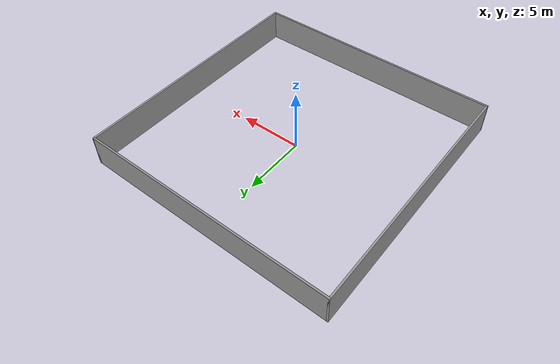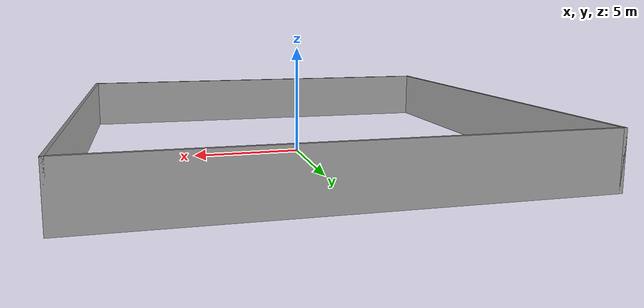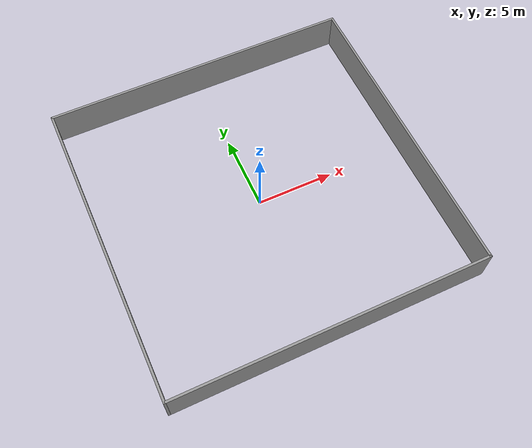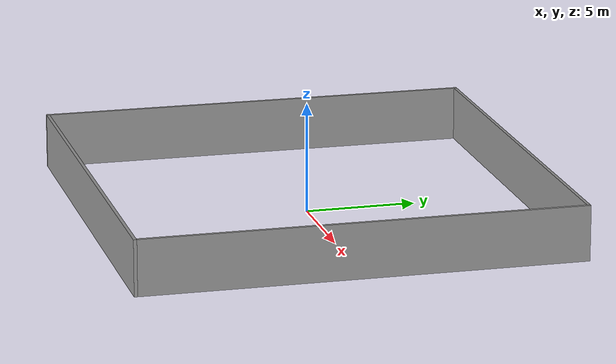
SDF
<?xml version='1.0'?>
<sdf version='1.7'>
  <model name='Untitled'>
    <pose>0.010594 -0.011741 0 0 -0 0</pose>
    <link name='Wall_5'>
      <collision name='Wall_5_Collision'>
        <geometry>
          <box>
            <size>20.25 0.15 2.5</size>
          </box>
        </geometry>
        <pose>0 0 1.25 0 -0 0</pose>
      </collision>
      <visual name='Wall_5_Visual'>
        <pose>0 0 1.25 0 -0 0</pose>
        <geometry>
          <box>
            <size>20.25 0.15 2.5</size>
          </box>
        </geometry>
        <material>
          <script>
            <uri>file://media/materials/scripts/gazebo.material</uri>
            <name>Gazebo/Grey</name>
          </script>
          <ambient>1 1 1 1</ambient>
        </material>
        <meta>
          <layer>0</layer>
        </meta>
      </visual>
      <pose>-0 9.925 0 0 -0 0</pose>
    </link>
    <link name='Wall_6'>
      <collision name='Wall_6_Collision'>
        <geometry>
          <box>
            <size>20 0.15 2.5</size>
          </box>
        </geometry>
        <pose>0 0 1.25 0 -0 0</pose>
      </collision>
      <visual name='Wall_6_Visual'>
        <pose>0 0 1.25 0 -0 0</pose>
        <geometry>
          <box>
            <size>20 0.15 2.5</size>
          </box>
        </geometry>
        <material>
          <script>
            <uri>file://media/materials/scripts/gazebo.material</uri>
            <name>Gazebo/Grey</name>
          </script>
          <ambient>1 1 1 1</ambient>
        </material>
        <meta>
          <layer>0</layer>
        </meta>
      </visual>
      <pose>10.05 0 0 0 -0 -1.5708</pose>
    </link>
    <link name='Wall_7'>
      <collision name='Wall_7_Collision'>
        <geometry>
          <box>
            <size>20.25 0.15 2.5</size>
          </box>
        </geometry>
        <pose>0 0 1.25 0 -0 0</pose>
      </collision>
      <visual name='Wall_7_Visual'>
        <pose>0 0 1.25 0 -0 0</pose>
        <geometry>
          <box>
            <size>20.25 0.15 2.5</size>
          </box>
        </geometry>
        <material>
          <script>
            <uri>file://media/materials/scripts/gazebo.material</uri>
            <name>Gazebo/Grey</name>
          </script>
          <ambient>1 1 1 1</ambient>
        </material>
        <meta>
          <layer>0</layer>
        </meta>
      </visual>
      <pose>-0 -9.925 0 0 -0 3.14159</pose>
    </link>
    <link name='Wall_8'>
      <collision name='Wall_8_Collision'>
        <geometry>
          <box>
            <size>20 0.15 2.5</size>
          </box>
        </geometry>
        <pose>0 0 1.25 0 -0 0</pose>
      </collision>
      <visual name='Wall_8_Visual'>
        <pose>0 0 1.25 0 -0 0</pose>
        <geometry>
          <box>
            <size>20 0.15 2.5</size>
          </box>
        </geometry>
        <material>
          <script>
            <uri>file://media/materials/scripts/gazebo.material</uri>
            <name>Gazebo/Grey</name>
          </script>
          <ambient>1 1 1 1</ambient>
        </material>
        <meta>
          <layer>0</layer>
        </meta>
      </visual>
      <pose>-10.05 0 0 0 -0 1.5708</pose>
    </link>
    <static>1</static>
  </model>
</sdf>
